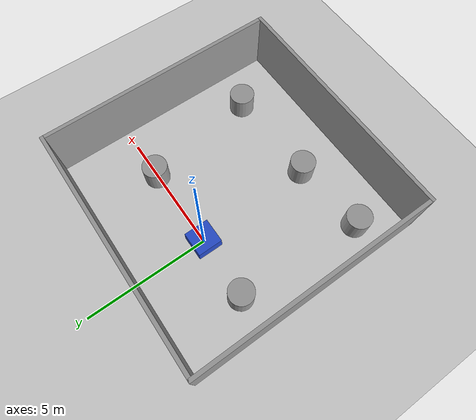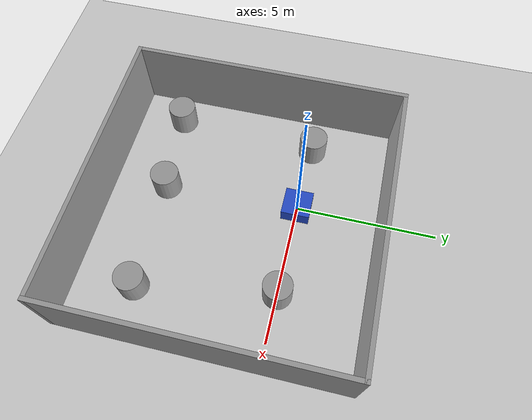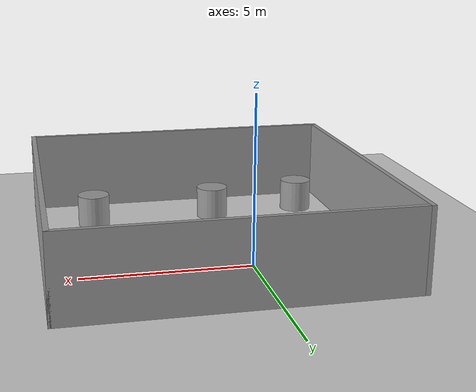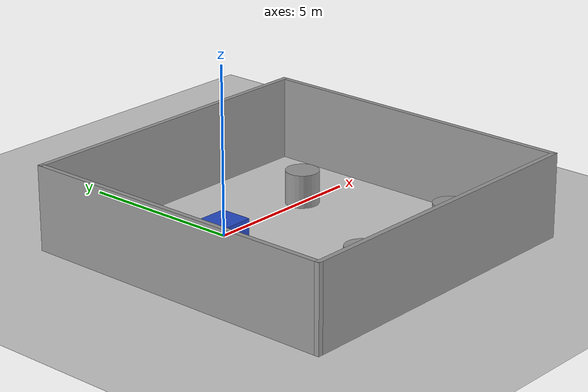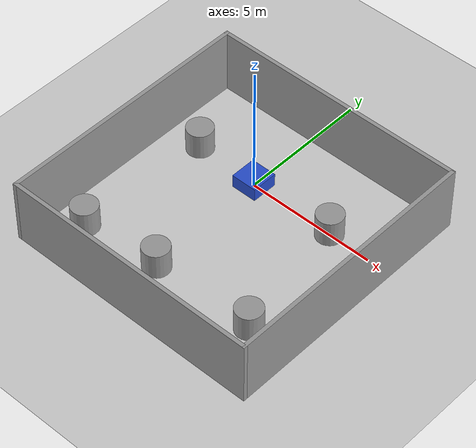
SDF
<sdf version="1.7">
 <world name="default">
  <light name="sun" type="directional">
   <pose>0 0 10 0 -0 0</pose>
   <diffuse>0.8 0.8 0.8 1</diffuse>
   <specular>0.2 0.2 0.2 1</specular>
   <attenuation>
    <range>1000</range>
    <constant>0.9</constant>
    <linear>0.01</linear>
    <quadratic>0.001</quadratic>
   </attenuation>
   <direction>-0.5 0.1 -0.9</direction>
   <spot><inner_angle>0</inner_angle><outer_angle>0</outer_angle><falloff>0</falloff></spot>
  </light>
  <model name="ground_plane">
   <static>1</static>
   <link name="link">
    <collision name="collision">
     <geometry><plane><normal>0 0 1</normal><size>100 100</size></plane></geometry>
     <surface><friction><ode><mu>100</mu><mu2>50</mu2></ode></friction></surface>
    </collision>
    <visual name="visual">
     <cast_shadows>0</cast_shadows>
     <geometry><plane><normal>0 0 1</normal><size>100 100</size></plane></geometry>
     <material>
      <script><uri>file://media/materials/scripts/gazebo.material</uri><name>Gazebo/Grey</name></script>
     </material>
    </visual>
   </link>
  </model>
  <gravity>0 0 -9.8</gravity>
  <magnetic_field>6e-06 2.3e-05 -4.2e-05</magnetic_field>
  <atmosphere type="adiabatic"/>
  <physics type="ode">
   <max_step_size>0.001</max_step_size>
   <real_time_factor>1</real_time_factor>
   <real_time_update_rate>1000</real_time_update_rate>
  </physics>
  <scene><ambient>0.4 0.4 0.4 1</ambient><background>0.7 0.7 0.7 1</background><shadows>1</shadows></scene>
  <audio><device>default</device></audio>
  <spherical_coordinates>
   <surface_model>EARTH_WGS84</surface_model>
   <latitude_deg>0</latitude_deg>
   <longitude_deg>0</longitude_deg>
   <elevation>0</elevation>
   <heading_deg>0</heading_deg>
  </spherical_coordinates>
  <model name="boundary_3">
   <pose>0.955605 -1.96098 0 0 -0 0</pose>
   <link name="Wall_6">
    <collision name="Wall_6_Collision">
     <geometry><box><size>10 0.15 2.5</size></box></geometry>
     <pose>0 0 1.25 0 -0 0</pose>
    </collision>
    <visual name="Wall_6_Visual">
     <pose>0 0 1.25 0 -0 0</pose>
     <geometry><box><size>10 0.15 2.5</size></box></geometry>
     <material>
      <script><uri>file://media/materials/scripts/gazebo.material</uri><name>Gazebo/Grey</name></script>
      <ambient>1 1 1 1</ambient>
     </material>
     <meta><layer>0</layer></meta>
    </visual>
    <pose>-0 4.925 0 0 -0 0</pose>
   </link>
   <link name="Wall_7">
    <collision name="Wall_7_Collision">
     <geometry><box><size>10 0.15 2.5</size></box></geometry>
     <pose>0 0 1.25 0 -0 0</pose>
    </collision>
    <visual name="Wall_7_Visual">
     <pose>0 0 1.25 0 -0 0</pose>
     <geometry><box><size>10 0.15 2.5</size></box></geometry>
     <material>
      <script><uri>file://media/materials/scripts/gazebo.material</uri><name>Gazebo/Grey</name></script>
      <ambient>1 1 1 1</ambient>
     </material>
     <meta><layer>0</layer></meta>
    </visual>
    <pose>4.925 -0 0 0 -0 -1.5708</pose>
   </link>
   <link name="Wall_8">
    <collision name="Wall_8_Collision">
     <geometry><box><size>10 0.15 2.5</size></box></geometry>
     <pose>0 0 1.25 0 -0 0</pose>
    </collision>
    <visual name="Wall_8_Visual">
     <pose>0 0 1.25 0 -0 0</pose>
     <geometry><box><size>10 0.15 2.5</size></box></geometry>
     <material>
      <script><uri>file://media/materials/scripts/gazebo.material</uri><name>Gazebo/Grey</name></script>
      <ambient>1 1 1 1</ambient>
     </material>
     <meta><layer>0</layer></meta>
    </visual>
    <pose>-0 -4.925 0 0 -0 3.14159</pose>
   </link>
   <link name="Wall_9">
    <collision name="Wall_9_Collision">
     <geometry><box><size>10 0.15 2.5</size></box></geometry>
     <pose>0 0 1.25 0 -0 0</pose>
    </collision>
    <visual name="Wall_9_Visual">
     <pose>0 0 1.25 0 -0 0</pose>
     <geometry><box><size>10 0.15 2.5</size></box></geometry>
     <material>
      <script><uri>file://media/materials/scripts/gazebo.material</uri><name>Gazebo/Grey</name></script>
      <ambient>1 1 1 1</ambient>
     </material>
     <meta><layer>0</layer></meta>
    </visual>
    <pose>-4.925 -0 0 0 -0 1.5708</pose>
   </link>
   <static>1</static>
  </model>
  <model name="unit_cylinder">
   <pose>3.33533 0.014852 0.499992 -3e-06 -4e-06 -0</pose>
   <link name="link">
    <inertial>
     <mass>1</mass>
     <inertia><ixx>0.145833</ixx><ixy>0</ixy><ixz>0</ixz><iyy>0.145833</iyy><iyz>0</iyz><izz>0.125</izz></inertia>
    </inertial>
    <collision name="collision">
     <geometry><cylinder><radius>0.5</radius><length>1</length></cylinder></geometry>
    </collision>
    <visual name="visual">
     <geometry><cylinder><radius>0.5</radius><length>1</length></cylinder></geometry>
     <material>
      <script><name>Gazebo/Grey</name><uri>file://media/materials/scripts/gazebo.material</uri></script>
     </material>
    </visual>
   </link>
  </model>
  <model name="unit_cylinder_0">
   <pose>4.12098 -4.72869 0.499993 -3e-06 -3e-06 0</pose>
   <link name="link">
    <inertial>
     <mass>1</mass>
     <inertia><ixx>0.145833</ixx><ixy>0</ixy><ixz>0</ixz><iyy>0.145833</iyy><iyz>0</iyz><izz>0.125</izz></inertia>
    </inertial>
    <collision name="collision">
     <geometry><cylinder><radius>0.5</radius><length>1</length></cylinder></geometry>
    </collision>
    <visual name="visual">
     <geometry><cylinder><radius>0.5</radius><length>1</length></cylinder></geometry>
     <material>
      <script><name>Gazebo/Grey</name><uri>file://media/materials/scripts/gazebo.material</uri></script>
     </material>
    </visual>
   </link>
  </model>
  <model name="unit_cylinder_1">
   <pose>0.177907 -4.83246 0.499997 3e-06 4e-06 -0</pose>
   <link name="link">
    <inertial>
     <mass>1</mass>
     <inertia><ixx>0.145833</ixx><ixy>0</ixy><ixz>0</ixz><iyy>0.145833</iyy><iyz>0</iyz><izz>0.125</izz></inertia>
    </inertial>
    <collision name="collision">
     <geometry><cylinder><radius>0.5</radius><length>1</length></cylinder></geometry>
    </collision>
    <visual name="visual">
     <geometry><cylinder><radius>0.5</radius><length>1</length></cylinder></geometry>
     <material>
      <script><name>Gazebo/Grey</name><uri>file://media/materials/scripts/gazebo.material</uri></script>
     </material>
    </visual>
   </link>
  </model>
  <model name="unit_cylinder_2">
   <pose>-2.53481 0.074148 0.499993 -3e-06 -4e-06 -0</pose>
   <link name="link">
    <inertial>
     <mass>1</mass>
     <inertia><ixx>0.145833</ixx><ixy>0</ixy><ixz>0</ixz><iyy>0.145833</iyy><iyz>0</iyz><izz>0.125</izz></inertia>
    </inertial>
    <collision name="collision">
     <geometry><cylinder><radius>0.5</radius><length>1</length></cylinder></geometry>
    </collision>
    <visual name="visual">
     <geometry><cylinder><radius>0.5</radius><length>1</length></cylinder></geometry>
     <material>
      <script><name>Gazebo/Grey</name><uri>file://media/materials/scripts/gazebo.material</uri></script>
     </material>
    </visual>
   </link>
  </model>
  <model name="unit_cylinder_3">
   <pose>-2.80163 -5.1141 0.499997 3e-06 4e-06 -0</pose>
   <link name="link">
    <inertial>
     <mass>1</mass>
     <inertia><ixx>0.145833</ixx><ixy>0</ixy><ixz>0</ixz><iyy>0.145833</iyy><iyz>0</iyz><izz>0.125</izz></inertia>
    </inertial>
    <collision name="collision">
     <geometry><cylinder><radius>0.5</radius><length>1</length></cylinder></geometry>
    </collision>
    <visual name="visual">
     <geometry><cylinder><radius>0.5</radius><length>1</length></cylinder></geometry>
     <material>
      <script><name>Gazebo/Grey</name><uri>file://media/materials/scripts/gazebo.material</uri></script>
     </material>
    </visual>
   </link>
  </model>
  <model name="box">
   <link name="box_link">
    <visual name="visual">
     <geometry><box><size>1 1 1</size></box></geometry>
     <material>
      <script><uri>file://media/materials/scripts/gazebo.material</uri><name>Gazebo/Blue</name></script>
     </material>
    </visual>
    <collision name="collision"><geometry><box><size>1 1 1</size></box></geometry></collision>
   </link>
   <plugin name="animated_box" filename="libanimated_box.so">
    <trajectory>
     <waypoint><time>0</time><pose>3 -1 0.5 0 0 0</pose></waypoint>
     <waypoint><time>20</time><pose>3 -5 0.5 0 0 0</pose></waypoint>
     <waypoint><time>40</time><pose>3 -1 0.5 0 0 0</pose></waypoint>
    </trajectory>
   </plugin>
  </model>
 </world>
</sdf>
